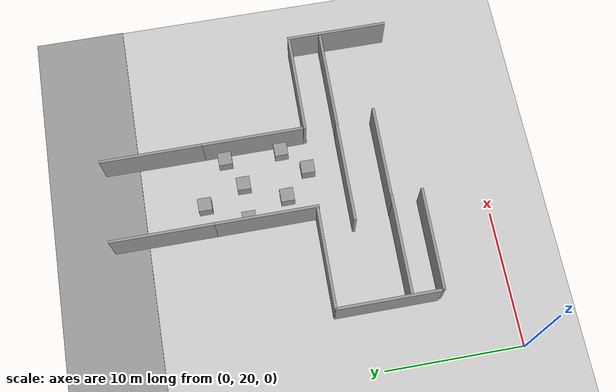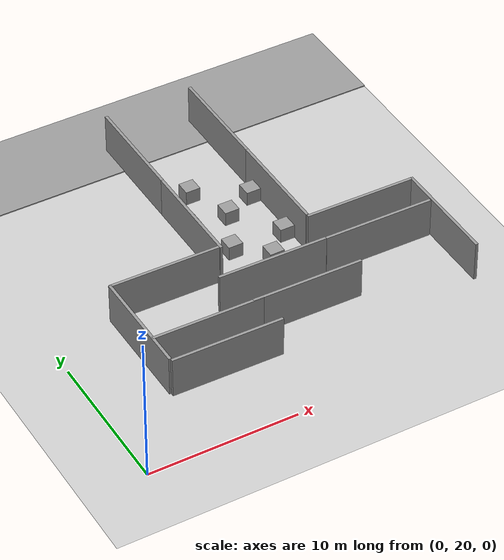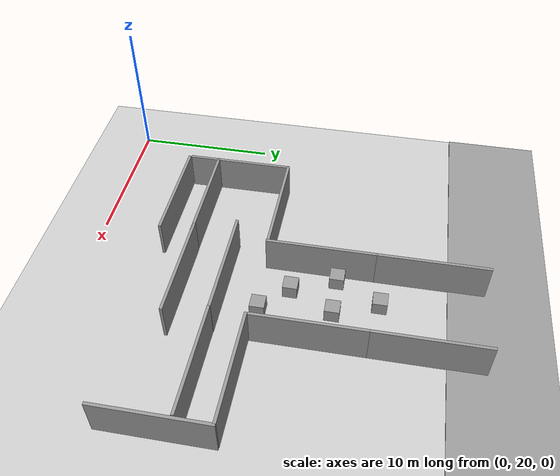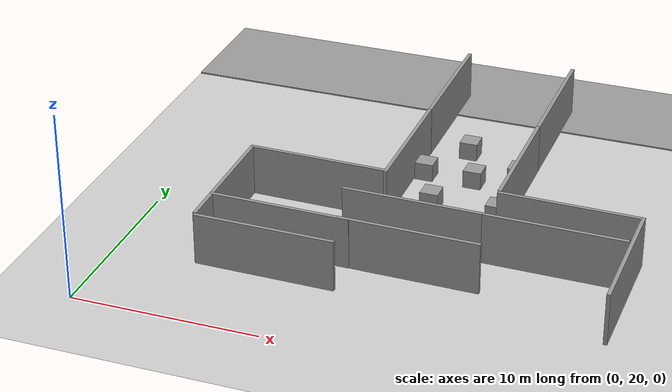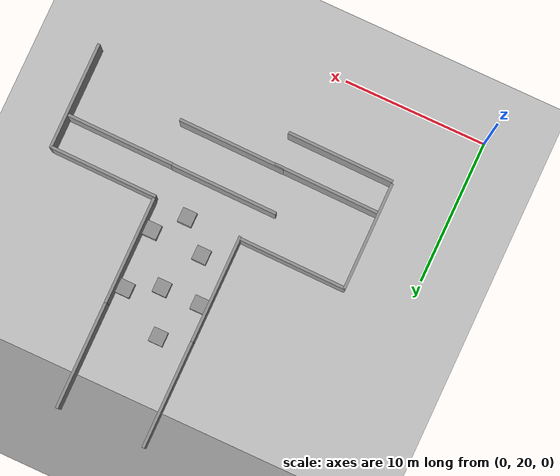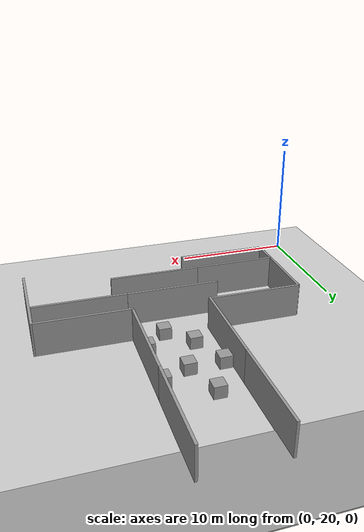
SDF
<sdf version="1.6">
 <world name="default">
  <model name="ground_plane">
   <static>1</static>
   <link name="link">
    <collision name="collision">
     <geometry><plane><normal>0 0 1</normal><size>100 100</size></plane></geometry>
     <surface>
      <contact><collide_bitmask>65535</collide_bitmask></contact>
      <friction><ode><mu>100</mu><mu2>50</mu2></ode></friction>
     </surface>
    </collision>
    <visual name="visual">
     <cast_shadows>0</cast_shadows>
     <geometry><plane><normal>0 0 1</normal><size>100 100</size></plane></geometry>
     <material>
      <script><uri>file://media/materials/scripts/gazebo.material</uri><name>Gazebo/Grey</name></script>
     </material>
    </visual>
   </link>
  </model>
  <model name="ground_plane_0">
   <static>1</static>
   <link name="link">
    <collision name="collision">
     <geometry><plane><normal>0 0 1</normal><size>100 100</size></plane></geometry>
     <surface><friction><ode><mu>100</mu><mu2>50</mu2></ode></friction></surface>
    </collision>
    <visual name="visual">
     <cast_shadows>0</cast_shadows>
     <geometry><plane><normal>0 0 1</normal><size>100 100</size></plane></geometry>
     <material>
      <script><uri>file://media/materials/scripts/gazebo.material</uri><name>Gazebo/Grey</name></script>
     </material>
    </visual>
   </link>
   <pose>0.033354 95.0033 0 0 -0 0</pose>
  </model>
  <model name="grey_wall_clone_clone_clone_clone">
   <static>1</static>
   <link name="link">
    <pose>0 0 1.4 0 -0 0</pose>
    <collision name="collision"><geometry><box><size>7.5 0.2 2.8</size></box></geometry></collision>
    <visual name="visual">
     <cast_shadows>0</cast_shadows>
     <geometry><box><size>7.5 0.2 2.8</size></box></geometry>
     <material>
      <script>
       <uri>model://grey_wall/materials/scripts</uri>
       <uri>model://grey_wall/materials/textures</uri>
       <name>vrc/grey_wall</name>
      </script>
     </material>
    </visual>
   </link>
   <pose>8.15827 25.0686 0 0 0 -0.012529</pose>
  </model>
  <model name="grey_wall_clone_clone_clone_clone_clone_0">
   <static>1</static>
   <link name="link">
    <pose>0 0 1.4 0 -0 0</pose>
    <collision name="collision"><geometry><box><size>7.5 0.2 2.8</size></box></geometry></collision>
    <visual name="visual">
     <cast_shadows>0</cast_shadows>
     <geometry><box><size>7.5 0.2 2.8</size></box></geometry>
     <material>
      <script>
       <uri>model://grey_wall/materials/scripts</uri>
       <uri>model://grey_wall/materials/textures</uri>
       <name>vrc/grey_wall</name>
      </script>
     </material>
    </visual>
   </link>
   <pose>14.9335 27.2545 0 0 0 -0.012529</pose>
  </model>
  <model name="grey_wall_clone_clone_clone_clone_clone_0_clone">
   <static>1</static>
   <link name="link">
    <pose>0 0 1.4 0 -0 0</pose>
    <collision name="collision"><geometry><box><size>7.5 0.2 2.8</size></box></geometry></collision>
    <visual name="visual">
     <cast_shadows>0</cast_shadows>
     <geometry><box><size>7.5 0.2 2.8</size></box></geometry>
     <material>
      <script>
       <uri>model://grey_wall/materials/scripts</uri>
       <uri>model://grey_wall/materials/textures</uri>
       <name>vrc/grey_wall</name>
      </script>
     </material>
    </visual>
   </link>
   <pose>4.38844 29.0039 0 0 -0 1.57375</pose>
  </model>
  <model name="grey_wall_clone_clone_clone_clone_clone_0_clone_clone">
   <static>1</static>
   <link name="link">
    <pose>0 0 1.4 0 -0 0</pose>
    <collision name="collision"><geometry><box><size>7.5 0.2 2.8</size></box></geometry></collision>
    <visual name="visual">
     <cast_shadows>0</cast_shadows>
     <geometry><box><size>7.5 0.2 2.8</size></box></geometry>
     <material>
      <script>
       <uri>model://grey_wall/materials/scripts</uri>
       <uri>model://grey_wall/materials/textures</uri>
       <name>vrc/grey_wall</name>
      </script>
     </material>
    </visual>
   </link>
   <pose>25.5369 28.6675 0 0 -0 1.57375</pose>
  </model>
  <model name="grey_wall_clone_clone_clone_clone_clone_0_clone_0">
   <static>1</static>
   <link name="link">
    <pose>0 0 1.4 0 -0 0</pose>
    <collision name="collision"><geometry><box><size>7.5 0.2 2.8</size></box></geometry></collision>
    <visual name="visual">
     <cast_shadows>0</cast_shadows>
     <geometry><box><size>7.5 0.2 2.8</size></box></geometry>
     <material>
      <script>
       <uri>model://grey_wall/materials/scripts</uri>
       <uri>model://grey_wall/materials/textures</uri>
       <name>vrc/grey_wall</name>
      </script>
     </material>
    </visual>
   </link>
   <pose>21.6401 30.0131 0 0 0 -0.012529</pose>
  </model>
  <model name="grey_wall_clone_clone_clone_clone_clone_0_clone_0_clone">
   <static>1</static>
   <link name="link">
    <pose>0 0 1.4 0 -0 0</pose>
    <collision name="collision"><geometry><box><size>7.5 0.2 2.8</size></box></geometry></collision>
    <visual name="visual">
     <cast_shadows>0</cast_shadows>
     <geometry><box><size>7.5 0.2 2.8</size></box></geometry>
     <material>
      <script>
       <uri>model://grey_wall/materials/scripts</uri>
       <uri>model://grey_wall/materials/textures</uri>
       <name>vrc/grey_wall</name>
      </script>
     </material>
    </visual>
   </link>
   <pose>14.1767 30.1259 0 0 0 -0.012529</pose>
  </model>
  <model name="grey_wall_clone_clone_clone_clone_clone_0_clone_0_clone_clone">
   <static>1</static>
   <link name="link">
    <pose>0 0 1.4 0 -0 0</pose>
    <collision name="collision"><geometry><box><size>7.5 0.2 2.8</size></box></geometry></collision>
    <visual name="visual">
     <cast_shadows>0</cast_shadows>
     <geometry><box><size>7.5 0.2 2.8</size></box></geometry>
     <material>
      <script>
       <uri>model://grey_wall/materials/scripts</uri>
       <uri>model://grey_wall/materials/textures</uri>
       <name>vrc/grey_wall</name>
      </script>
     </material>
    </visual>
   </link>
   <pose>8.10687 27.3185 0 0 0 -0.012529</pose>
  </model>
  <model name="grey_wall_clone_clone_clone_clone_clone_0_clone_0_clone_clone_0">
   <static>1</static>
   <link name="link">
    <pose>0 0 1.4 0 -0 0</pose>
    <collision name="collision"><geometry><box><size>7.5 0.2 2.8</size></box></geometry></collision>
    <visual name="visual">
     <cast_shadows>0</cast_shadows>
     <geometry><box><size>7.5 0.2 2.8</size></box></geometry>
     <material>
      <script>
       <uri>model://grey_wall/materials/scripts</uri>
       <uri>model://grey_wall/materials/textures</uri>
       <name>vrc/grey_wall</name>
      </script>
     </material>
    </visual>
   </link>
   <pose>8.0867 32.6709 0 0 0 -0.012529</pose>
  </model>
  <model name="grey_wall_clone_clone_clone_clone_clone_0_clone_0_clone_0">
   <static>1</static>
   <link name="link">
    <pose>0 0 1.4 0 -0 0</pose>
    <collision name="collision"><geometry><box><size>7.5 0.2 2.8</size></box></geometry></collision>
    <visual name="visual">
     <cast_shadows>0</cast_shadows>
     <geometry><box><size>7.5 0.2 2.8</size></box></geometry>
     <material>
      <script>
       <uri>model://grey_wall/materials/scripts</uri>
       <uri>model://grey_wall/materials/textures</uri>
       <name>vrc/grey_wall</name>
      </script>
     </material>
    </visual>
   </link>
   <pose>21.7268 32.3808 0 0 0 -0.012529</pose>
  </model>
  <model name="grey_wall_clone_clone_clone_clone_clone_0_clone_clone_clone">
   <static>1</static>
   <link name="link">
    <pose>0 0 1.4 0 -0 0</pose>
    <collision name="collision"><geometry><box><size>7.5 0.2 2.8</size></box></geometry></collision>
    <visual name="visual">
     <cast_shadows>0</cast_shadows>
     <geometry><box><size>7.5 0.2 2.8</size></box></geometry>
     <material>
      <script>
       <uri>model://grey_wall/materials/scripts</uri>
       <uri>model://grey_wall/materials/textures</uri>
       <name>vrc/grey_wall</name>
      </script>
     </material>
    </visual>
   </link>
   <pose>18.027 36.3108 0 0 -0 1.57375</pose>
  </model>
  <model name="grey_wall_clone_clone_clone_clone_clone_0_clone_clone_clone_0">
   <static>1</static>
   <link name="link">
    <pose>0 0 1.4 0 -0 0</pose>
    <collision name="collision"><geometry><box><size>7.5 0.2 2.8</size></box></geometry></collision>
    <visual name="visual">
     <cast_shadows>0</cast_shadows>
     <geometry><box><size>7.5 0.2 2.8</size></box></geometry>
     <material>
      <script>
       <uri>model://grey_wall/materials/scripts</uri>
       <uri>model://grey_wall/materials/textures</uri>
       <name>vrc/grey_wall</name>
      </script>
     </material>
    </visual>
   </link>
   <pose>11.8968 36.2374 0 0 -0 1.57375</pose>
  </model>
  <model name="grey_wall_clone_clone_clone_clone_clone_0_clone_clone_clone_0_clone">
   <static>1</static>
   <link name="link">
    <pose>0 0 1.4 0 -0 0</pose>
    <collision name="collision"><geometry><box><size>7.5 0.2 2.8</size></box></geometry></collision>
    <visual name="visual">
     <cast_shadows>0</cast_shadows>
     <geometry><box><size>7.5 0.2 2.8</size></box></geometry>
     <material>
      <script>
       <uri>model://grey_wall/materials/scripts</uri>
       <uri>model://grey_wall/materials/textures</uri>
       <name>vrc/grey_wall</name>
      </script>
     </material>
    </visual>
   </link>
   <pose>11.8789 43.7332 0 0 -0 1.57375</pose>
  </model>
  <model name="grey_wall_clone_clone_clone_clone_clone_0_clone_clone_clone_0_clone_0">
   <static>1</static>
   <link name="link">
    <pose>0 0 1.4 0 -0 0</pose>
    <collision name="collision"><geometry><box><size>7.5 0.2 2.8</size></box></geometry></collision>
    <visual name="visual">
     <cast_shadows>0</cast_shadows>
     <geometry><box><size>7.5 0.2 2.8</size></box></geometry>
     <material>
      <script>
       <uri>model://grey_wall/materials/scripts</uri>
       <uri>model://grey_wall/materials/textures</uri>
       <name>vrc/grey_wall</name>
      </script>
     </material>
    </visual>
   </link>
   <pose>18.0042 43.7664 0 0 -0 1.57375</pose>
  </model>
  <model name="unit_box">
   <pose>17.4069 38.584 0.5 0 -0 0</pose>
   <link name="link">
    <inertial>
     <mass>1</mass>
     <inertia>
      <ixx>0.166667</ixx>
      <ixy>0</ixy>
      <ixz>0</ixz>
      <iyy>0.166667</iyy>
      <iyz>0</iyz>
      <izz>0.166667</izz>
     </inertia>
    </inertial>
    <collision name="collision"><geometry><box><size>1 1 1</size></box></geometry></collision>
    <visual name="visual">
     <geometry><box><size>1 1 1</size></box></geometry>
     <material>
      <script><name>Gazebo/Grey</name><uri>file://media/materials/scripts/gazebo.material</uri></script>
     </material>
    </visual>
   </link>
  </model>
  <model name="unit_box_clone">
   <pose>14.1059 40.5574 0.5 0 -0 0</pose>
   <link name="link">
    <inertial>
     <mass>1</mass>
     <inertia>
      <ixx>0.166667</ixx>
      <ixy>0</ixy>
      <ixz>0</ixz>
      <iyy>0.166667</iyy>
      <iyz>0</iyz>
      <izz>0.166667</izz>
     </inertia>
    </inertial>
    <collision name="collision"><geometry><box><size>1 1 1</size></box></geometry></collision>
    <visual name="visual">
     <geometry><box><size>1 1 1</size></box></geometry>
     <material>
      <script><name>Gazebo/Grey</name><uri>file://media/materials/scripts/gazebo.material</uri></script>
     </material>
    </visual>
   </link>
  </model>
  <model name="unit_box_clone_0">
   <pose>15.2416 37.5308 0.5 0 -0 0</pose>
   <link name="link">
    <inertial>
     <mass>1</mass>
     <inertia>
      <ixx>0.166667</ixx>
      <ixy>0</ixy>
      <ixz>0</ixz>
      <iyy>0.166667</iyy>
      <iyz>0</iyz>
      <izz>0.166667</izz>
     </inertia>
    </inertial>
    <collision name="collision"><geometry><box><size>1 1 1</size></box></geometry></collision>
    <visual name="visual">
     <geometry><box><size>1 1 1</size></box></geometry>
     <material>
      <script><name>Gazebo/Grey</name><uri>file://media/materials/scripts/gazebo.material</uri></script>
     </material>
    </visual>
   </link>
  </model>
  <model name="unit_box_clone_1">
   <pose>12.535 37.5216 0.5 0 -0 0</pose>
   <link name="link">
    <inertial>
     <mass>1</mass>
     <inertia>
      <ixx>0.166667</ixx>
      <ixy>0</ixy>
      <ixz>0</ixz>
      <iyy>0.166667</iyy>
      <iyz>0</iyz>
      <izz>0.166667</izz>
     </inertia>
    </inertial>
    <collision name="collision"><geometry><box><size>1 1 1</size></box></geometry></collision>
    <visual name="visual">
     <geometry><box><size>1 1 1</size></box></geometry>
     <material>
      <script><name>Gazebo/Grey</name><uri>file://media/materials/scripts/gazebo.material</uri></script>
     </material>
    </visual>
   </link>
  </model>
  <model name="unit_box_clone_2">
   <pose>13.7918 34.5208 0.5 0 -0 0</pose>
   <link name="link">
    <inertial>
     <mass>1</mass>
     <inertia>
      <ixx>0.166667</ixx>
      <ixy>0</ixy>
      <ixz>0</ixz>
      <iyy>0.166667</iyy>
      <iyz>0</iyz>
      <izz>0.166667</izz>
     </inertia>
    </inertial>
    <collision name="collision"><geometry><box><size>1 1 1</size></box></geometry></collision>
    <visual name="visual">
     <geometry><box><size>1 1 1</size></box></geometry>
     <material>
      <script><name>Gazebo/Grey</name><uri>file://media/materials/scripts/gazebo.material</uri></script>
     </material>
    </visual>
   </link>
  </model>
  <model name="unit_box_clone_3">
   <pose>17.424 34.3853 0.5 0 -0 0</pose>
   <link name="link">
    <inertial>
     <mass>1</mass>
     <inertia>
      <ixx>0.166667</ixx>
      <ixy>0</ixy>
      <ixz>0</ixz>
      <iyy>0.166667</iyy>
      <iyz>0</iyz>
      <izz>0.166667</izz>
     </inertia>
    </inertial>
    <collision name="collision"><geometry><box><size>1 1 1</size></box></geometry></collision>
    <visual name="visual">
     <geometry><box><size>1 1 1</size></box></geometry>
     <material>
      <script><name>Gazebo/Grey</name><uri>file://media/materials/scripts/gazebo.material</uri></script>
     </material>
    </visual>
   </link>
  </model>
  <model name="unit_box_clone_4">
   <pose>15.6878 32.6609 0.5 0 -0 0</pose>
   <link name="link">
    <inertial>
     <mass>1</mass>
     <inertia>
      <ixx>0.166667</ixx>
      <ixy>0</ixy>
      <ixz>0</ixz>
      <iyy>0.166667</iyy>
      <iyz>0</iyz>
      <izz>0.166667</izz>
     </inertia>
    </inertial>
    <collision name="collision"><geometry><box><size>1 1 1</size></box></geometry></collision>
    <visual name="visual">
     <geometry><box><size>1 1 1</size></box></geometry>
     <material>
      <script><name>Gazebo/Grey</name><uri>file://media/materials/scripts/gazebo.material</uri></script>
     </material>
    </visual>
   </link>
  </model>
 </world>
</sdf>
